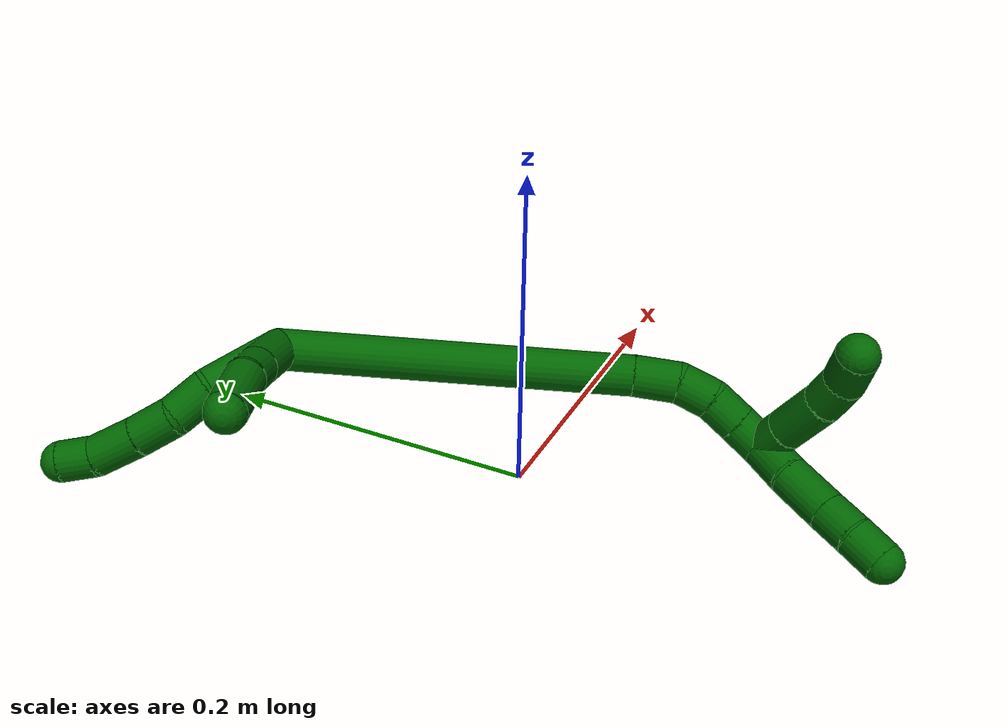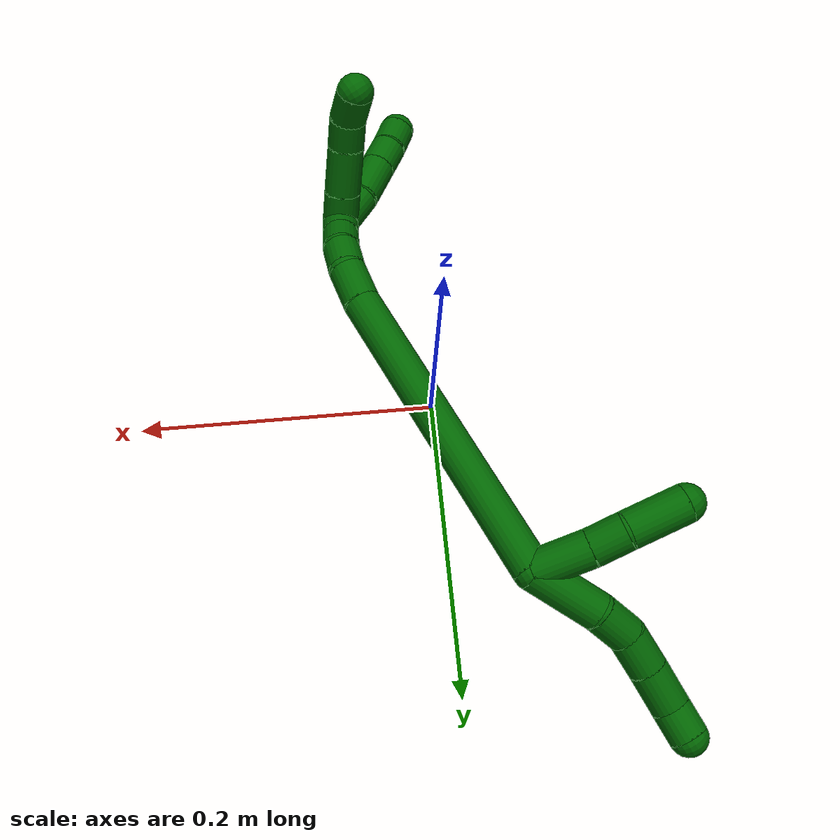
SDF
<sdf version="1.7">
 <world name="default">
  <model name="6">
   <static>0</static>
   <link name="6">
    <collision name="collision-cylinder-e_1_2_8">
     <pose>-0.019974 0.008242 0.009951 -0.691714 -0.996614 0.387215</pose>
     <geometry><cylinder><radius>0.0125</radius><length>0.047579</length></cylinder></geometry>
     <surface>
      <friction><ode><mu>1.16</mu><mu2>1.16</mu2><slip1>0</slip1><slip2>0</slip2></ode></friction>
      <contact><ode><kp>1e+06</kp><kd>1</kd><max_vel>0</max_vel><min_depth>0.001</min_depth></ode></contact>
     </surface>
    </collision>
    <visual name="visual-cylinder-e_1_2_8">
     <pose>-0.019974 0.008242 0.009951 -0.691714 -0.996614 0.387215</pose>
     <geometry><cylinder><radius>0.0125</radius><length>0.047579</length></cylinder></geometry>
     <material><ambient>0 0.392157 0.003922 1</ambient></material>
    </visual>
    <collision name="collision-cylinder-e_2_8_9">
     <pose>-0.05201 0.018405 0.023685 -0.469964 -1.23259 0.335961</pose>
     <geometry><cylinder><radius>0.0125</radius><length>0.025572</length></cylinder></geometry>
     <surface>
      <friction><ode><mu>1.16</mu><mu2>1.16</mu2><slip1>0</slip1><slip2>0</slip2></ode></friction>
      <contact><ode><kp>1e+06</kp><kd>1</kd><max_vel>0</max_vel><min_depth>0.001</min_depth></ode></contact>
     </surface>
    </collision>
    <visual name="visual-cylinder-e_2_8_9">
     <pose>-0.05201 0.018405 0.023685 -0.469964 -1.23259 0.335961</pose>
     <geometry><cylinder><radius>0.0125</radius><length>0.025572</length></cylinder></geometry>
     <material><ambient>0 0.392157 0.003922 1</ambient></material>
    </visual>
    <collision name="collision-cylinder-e_3_9_10">
     <pose>-0.076538 0.023755 0.027486 -1.56531 -1.30238 1.2971</pose>
     <geometry><cylinder><radius>0.0125</radius><length>0.025858</length></cylinder></geometry>
     <surface>
      <friction><ode><mu>1.16</mu><mu2>1.16</mu2><slip1>0</slip1><slip2>0</slip2></ode></friction>
      <contact><ode><kp>1e+06</kp><kd>1</kd><max_vel>0</max_vel><min_depth>0.001</min_depth></ode></contact>
     </surface>
    </collision>
    <visual name="visual-cylinder-e_3_9_10">
     <pose>-0.076538 0.023755 0.027486 -1.56531 -1.30238 1.2971</pose>
     <geometry><cylinder><radius>0.0125</radius><length>0.025858</length></cylinder></geometry>
     <material><ambient>0 0.392157 0.003922 1</ambient></material>
    </visual>
    <collision name="collision-cylinder-e_4_10_11">
     <pose>-0.103023 0.031858 0.027137 -1.64941 -1.24802 1.32353</pose>
     <geometry><cylinder><radius>0.0125</radius><length>0.029563</length></cylinder></geometry>
     <surface>
      <friction><ode><mu>1.16</mu><mu2>1.16</mu2><slip1>0</slip1><slip2>0</slip2></ode></friction>
      <contact><ode><kp>1e+06</kp><kd>1</kd><max_vel>0</max_vel><min_depth>0.001</min_depth></ode></contact>
     </surface>
    </collision>
    <visual name="visual-cylinder-e_4_10_11">
     <pose>-0.103023 0.031858 0.027137 -1.64941 -1.24802 1.32353</pose>
     <geometry><cylinder><radius>0.0125</radius><length>0.029563</length></cylinder></geometry>
     <material><ambient>0 0.392157 0.003922 1</ambient></material>
    </visual>
    <collision name="collision-cylinder-e_5_11_6">
     <pose>-0.12585 0.042611 0.02628 -1.6509 -0.965272 1.03268</pose>
     <geometry><cylinder><radius>0.0125</radius><length>0.021428</length></cylinder></geometry>
     <surface>
      <friction><ode><mu>1.16</mu><mu2>1.16</mu2><slip1>0</slip1><slip2>0</slip2></ode></friction>
      <contact><ode><kp>1e+06</kp><kd>1</kd><max_vel>0</max_vel><min_depth>0.001</min_depth></ode></contact>
     </surface>
    </collision>
    <visual name="visual-cylinder-e_5_11_6">
     <pose>-0.12585 0.042611 0.02628 -1.6509 -0.965272 1.03268</pose>
     <geometry><cylinder><radius>0.0125</radius><length>0.021428</length></cylinder></geometry>
     <material><ambient>0 0.392157 0.003922 1</ambient></material>
    </visual>
    <collision name="collision-cylinder-e_1_2_12">
     <pose>-0.001875 0.004034 0.018224 -0.21783 -0.100141 0.010959</pose>
     <geometry><cylinder><radius>0.0125</radius><length>0.037517</length></cylinder></geometry>
     <surface>
      <friction><ode><mu>1.16</mu><mu2>1.16</mu2><slip1>0</slip1><slip2>0</slip2></ode></friction>
      <contact><ode><kp>1e+06</kp><kd>1</kd><max_vel>0</max_vel><min_depth>0.001</min_depth></ode></contact>
     </surface>
    </collision>
    <visual name="visual-cylinder-e_1_2_12">
     <pose>-0.001875 0.004034 0.018224 -0.21783 -0.100141 0.010959</pose>
     <geometry><cylinder><radius>0.0125</radius><length>0.037517</length></cylinder></geometry>
     <material><ambient>0 0.392157 0.003922 1</ambient></material>
    </visual>
    <collision name="collision-cylinder-e_2_12_13">
     <pose>-0.003969 0.010231 0.047924 -0.18636 -0.018685 0.001746</pose>
     <geometry><cylinder><radius>0.0125</radius><length>0.023362</length></cylinder></geometry>
     <surface>
      <friction><ode><mu>1.16</mu><mu2>1.16</mu2><slip1>0</slip1><slip2>0</slip2></ode></friction>
      <contact><ode><kp>1e+06</kp><kd>1</kd><max_vel>0</max_vel><min_depth>0.001</min_depth></ode></contact>
     </surface>
    </collision>
    <visual name="visual-cylinder-e_2_12_13">
     <pose>-0.003969 0.010231 0.047924 -0.18636 -0.018685 0.001746</pose>
     <geometry><cylinder><radius>0.0125</radius><length>0.023362</length></cylinder></geometry>
     <material><ambient>0 0.392157 0.003922 1</ambient></material>
    </visual>
    <collision name="collision-cylinder-e_3_13_5">
     <pose>-0.007188 0.012955 0.078722 -0.028969 -0.153993 0.002235</pose>
     <geometry><cylinder><radius>0.0125</radius><length>0.039121</length></cylinder></geometry>
     <surface>
      <friction><ode><mu>1.16</mu><mu2>1.16</mu2><slip1>0</slip1><slip2>0</slip2></ode></friction>
      <contact><ode><kp>1e+06</kp><kd>1</kd><max_vel>0</max_vel><min_depth>0.001</min_depth></ode></contact>
     </surface>
    </collision>
    <visual name="visual-cylinder-e_3_13_5">
     <pose>-0.007188 0.012955 0.078722 -0.028969 -0.153993 0.002235</pose>
     <geometry><cylinder><radius>0.0125</radius><length>0.039121</length></cylinder></geometry>
     <material><ambient>0 0.392157 0.003922 1</ambient></material>
    </visual>
    <collision name="collision-cylinder-e_1_2_14">
     <pose>0.068822 -0.079926 0.003038 1.53281 0.710534 0.686108</pose>
     <geometry><cylinder><radius>0.0125</radius><length>0.211035</length></cylinder></geometry>
     <surface>
      <friction><ode><mu>1.16</mu><mu2>1.16</mu2><slip1>0</slip1><slip2>0</slip2></ode></friction>
      <contact><ode><kp>1e+06</kp><kd>1</kd><max_vel>0</max_vel><min_depth>0.001</min_depth></ode></contact>
     </surface>
    </collision>
    <visual name="visual-cylinder-e_1_2_14">
     <pose>0.068822 -0.079926 0.003038 1.53281 0.710534 0.686108</pose>
     <geometry><cylinder><radius>0.0125</radius><length>0.211035</length></cylinder></geometry>
     <material><ambient>0 0.392157 0.003922 1</ambient></material>
    </visual>
    <collision name="collision-cylinder-e_2_14_15">
     <pose>0.146075 -0.170382 0.008258 1.36641 0.664812 0.547865</pose>
     <geometry><cylinder><radius>0.0125</radius><length>0.027329</length></cylinder></geometry>
     <surface>
      <friction><ode><mu>1.16</mu><mu2>1.16</mu2><slip1>0</slip1><slip2>0</slip2></ode></friction>
      <contact><ode><kp>1e+06</kp><kd>1</kd><max_vel>0</max_vel><min_depth>0.001</min_depth></ode></contact>
     </surface>
    </collision>
    <visual name="visual-cylinder-e_2_14_15">
     <pose>0.146075 -0.170382 0.008258 1.36641 0.664812 0.547865</pose>
     <geometry><cylinder><radius>0.0125</radius><length>0.027329</length></cylinder></geometry>
     <material><ambient>0 0.392157 0.003922 1</ambient></material>
    </visual>
    <collision name="collision-cylinder-e_3_15_16">
     <pose>0.158171 -0.190698 0.013073 1.30796 0.347214 0.267244</pose>
     <geometry><cylinder><radius>0.0125</radius><length>0.021553</length></cylinder></geometry>
     <surface>
      <friction><ode><mu>1.16</mu><mu2>1.16</mu2><slip1>0</slip1><slip2>0</slip2></ode></friction>
      <contact><ode><kp>1e+06</kp><kd>1</kd><max_vel>0</max_vel><min_depth>0.001</min_depth></ode></contact>
     </surface>
    </collision>
    <visual name="visual-cylinder-e_3_15_16">
     <pose>0.158171 -0.190698 0.013073 1.30796 0.347214 0.267244</pose>
     <geometry><cylinder><radius>0.0125</radius><length>0.021553</length></cylinder></geometry>
     <material><ambient>0 0.392157 0.003922 1</ambient></material>
    </visual>
    <collision name="collision-cylinder-e_4_16_17">
     <pose>0.162496 -0.21008 0.018573 1.28053 0.0656 0.048877</pose>
     <geometry><cylinder><radius>0.0125</radius><length>0.020074</length></cylinder></geometry>
     <surface>
      <friction><ode><mu>1.16</mu><mu2>1.16</mu2><slip1>0</slip1><slip2>0</slip2></ode></friction>
      <contact><ode><kp>1e+06</kp><kd>1</kd><max_vel>0</max_vel><min_depth>0.001</min_depth></ode></contact>
     </surface>
    </collision>
    <visual name="visual-cylinder-e_4_16_17">
     <pose>0.162496 -0.21008 0.018573 1.28053 0.0656 0.048877</pose>
     <geometry><cylinder><radius>0.0125</radius><length>0.020074</length></cylinder></geometry>
     <material><ambient>0 0.392157 0.003922 1</ambient></material>
    </visual>
    <collision name="collision-cylinder-e_5_17_1">
     <pose>0.163728 -0.229201 0.024447 1.26489 0.057396 0.042069</pose>
     <geometry><cylinder><radius>0.0125</radius><length>0.02001</length></cylinder></geometry>
     <surface>
      <friction><ode><mu>1.16</mu><mu2>1.16</mu2><slip1>0</slip1><slip2>0</slip2></ode></friction>
      <contact><ode><kp>1e+06</kp><kd>1</kd><max_vel>0</max_vel><min_depth>0.001</min_depth></ode></contact>
     </surface>
    </collision>
    <visual name="visual-cylinder-e_5_17_1">
     <pose>0.163728 -0.229201 0.024447 1.26489 0.057396 0.042069</pose>
     <geometry><cylinder><radius>0.0125</radius><length>0.02001</length></cylinder></geometry>
     <material><ambient>0 0.392157 0.003922 1</ambient></material>
    </visual>
    <collision name="collision-cylinder-e_1_1_18">
     <pose>0.174002 -0.236654 0.033343 -0.338433 0.999064 -0.185927</pose>
     <geometry><cylinder><radius>0.0125</radius><length>0.023069</length></cylinder></geometry>
     <surface>
      <friction><ode><mu>1.16</mu><mu2>1.16</mu2><slip1>0</slip1><slip2>0</slip2></ode></friction>
      <contact><ode><kp>1e+06</kp><kd>1</kd><max_vel>0</max_vel><min_depth>0.001</min_depth></ode></contact>
     </surface>
    </collision>
    <visual name="visual-cylinder-e_1_1_18">
     <pose>0.174002 -0.236654 0.033343 -0.338433 0.999064 -0.185927</pose>
     <geometry><cylinder><radius>0.0125</radius><length>0.023069</length></cylinder></geometry>
     <material><ambient>0 0.392157 0.003922 1</ambient></material>
    </visual>
    <collision name="collision-cylinder-e_2_18_19">
     <pose>0.197689 -0.231518 0.047913 -0.33914 0.988576 -0.184017</pose>
     <geometry><cylinder><radius>0.0125</radius><length>0.03349</length></cylinder></geometry>
     <surface>
      <friction><ode><mu>1.16</mu><mu2>1.16</mu2><slip1>0</slip1><slip2>0</slip2></ode></friction>
      <contact><ode><kp>1e+06</kp><kd>1</kd><max_vel>0</max_vel><min_depth>0.001</min_depth></ode></contact>
     </surface>
    </collision>
    <visual name="visual-cylinder-e_2_18_19">
     <pose>0.197689 -0.231518 0.047913 -0.33914 0.988576 -0.184017</pose>
     <geometry><cylinder><radius>0.0125</radius><length>0.03349</length></cylinder></geometry>
     <material><ambient>0 0.392157 0.003922 1</ambient></material>
    </visual>
    <collision name="collision-cylinder-e_3_19_20">
     <pose>0.220327 -0.225325 0.06148 -0.570069 0.98022 -0.310152</pose>
     <geometry><cylinder><radius>0.0125</radius><length>0.020833</length></cylinder></geometry>
     <surface>
      <friction><ode><mu>1.16</mu><mu2>1.16</mu2><slip1>0</slip1><slip2>0</slip2></ode></friction>
      <contact><ode><kp>1e+06</kp><kd>1</kd><max_vel>0</max_vel><min_depth>0.001</min_depth></ode></contact>
     </surface>
    </collision>
    <visual name="visual-cylinder-e_3_19_20">
     <pose>0.220327 -0.225325 0.06148 -0.570069 0.98022 -0.310152</pose>
     <geometry><cylinder><radius>0.0125</radius><length>0.020833</length></cylinder></geometry>
     <material><ambient>0 0.392157 0.003922 1</ambient></material>
    </visual>
    <collision name="collision-cylinder-e_4_20_4">
     <pose>0.236795 -0.216345 0.072062 -0.798348 0.763432 -0.335458</pose>
     <geometry><cylinder><radius>0.0125</radius><length>0.022608</length></cylinder></geometry>
     <surface>
      <friction><ode><mu>1.16</mu><mu2>1.16</mu2><slip1>0</slip1><slip2>0</slip2></ode></friction>
      <contact><ode><kp>1e+06</kp><kd>1</kd><max_vel>0</max_vel><min_depth>0.001</min_depth></ode></contact>
     </surface>
    </collision>
    <visual name="visual-cylinder-e_4_20_4">
     <pose>0.236795 -0.216345 0.072062 -0.798348 0.763432 -0.335458</pose>
     <geometry><cylinder><radius>0.0125</radius><length>0.022608</length></cylinder></geometry>
     <material><ambient>0 0.392157 0.003922 1</ambient></material>
    </visual>
    <collision name="collision-cylinder-e_1_1_21">
     <pose>0.165741 -0.245736 0.039015 0.54519 0.106068 0.029677</pose>
     <geometry><cylinder><radius>0.0125</radius><length>0.027191</length></cylinder></geometry>
     <surface>
      <friction><ode><mu>1.16</mu><mu2>1.16</mu2><slip1>0</slip1><slip2>0</slip2></ode></friction>
      <contact><ode><kp>1e+06</kp><kd>1</kd><max_vel>0</max_vel><min_depth>0.001</min_depth></ode></contact>
     </surface>
    </collision>
    <visual name="visual-cylinder-e_1_1_21">
     <pose>0.165741 -0.245736 0.039015 0.54519 0.106068 0.029677</pose>
     <geometry><cylinder><radius>0.0125</radius><length>0.027191</length></cylinder></geometry>
     <material><ambient>0 0.392157 0.003922 1</ambient></material>
    </visual>
    <collision name="collision-cylinder-e_2_21_22">
     <pose>0.169457 -0.26294 0.062138 0.722492 0.146604 0.055476</pose>
     <geometry><cylinder><radius>0.0125</radius><length>0.031164</length></cylinder></geometry>
     <surface>
      <friction><ode><mu>1.16</mu><mu2>1.16</mu2><slip1>0</slip1><slip2>0</slip2></ode></friction>
      <contact><ode><kp>1e+06</kp><kd>1</kd><max_vel>0</max_vel><min_depth>0.001</min_depth></ode></contact>
     </surface>
    </collision>
    <visual name="visual-cylinder-e_2_21_22">
     <pose>0.169457 -0.26294 0.062138 0.722492 0.146604 0.055476</pose>
     <geometry><cylinder><radius>0.0125</radius><length>0.031164</length></cylinder></geometry>
     <material><ambient>0 0.392157 0.003922 1</ambient></material>
    </visual>
    <collision name="collision-cylinder-e_3_22_23">
     <pose>0.173477 -0.279697 0.081624 0.691854 0.1679 0.060639</pose>
     <geometry><cylinder><radius>0.0125</radius><length>0.02087</length></cylinder></geometry>
     <surface>
      <friction><ode><mu>1.16</mu><mu2>1.16</mu2><slip1>0</slip1><slip2>0</slip2></ode></friction>
      <contact><ode><kp>1e+06</kp><kd>1</kd><max_vel>0</max_vel><min_depth>0.001</min_depth></ode></contact>
     </surface>
    </collision>
    <visual name="visual-cylinder-e_3_22_23">
     <pose>0.173477 -0.279697 0.081624 0.691854 0.1679 0.060639</pose>
     <geometry><cylinder><radius>0.0125</radius><length>0.02087</length></cylinder></geometry>
     <material><ambient>0 0.392157 0.003922 1</ambient></material>
    </visual>
    <collision name="collision-cylinder-e_4_23_3">
     <pose>0.176602 -0.293882 0.096468 0.833503 0.133346 0.0591</pose>
     <geometry><cylinder><radius>0.0125</radius><length>0.020775</length></cylinder></geometry>
     <surface>
      <friction><ode><mu>1.16</mu><mu2>1.16</mu2><slip1>0</slip1><slip2>0</slip2></ode></friction>
      <contact><ode><kp>1e+06</kp><kd>1</kd><max_vel>0</max_vel><min_depth>0.001</min_depth></ode></contact>
     </surface>
    </collision>
    <visual name="visual-cylinder-e_4_23_3">
     <pose>0.176602 -0.293882 0.096468 0.833503 0.133346 0.0591</pose>
     <geometry><cylinder><radius>0.0125</radius><length>0.020775</length></cylinder></geometry>
     <material><ambient>0 0.392157 0.003922 1</ambient></material>
    </visual>
    <collision name="collision-sphere-3">
     <pose>0.177983 -0.301504 0.103389 0 -0 0</pose>
     <geometry><sphere><radius>0.0125</radius></sphere></geometry>
     <surface>
      <friction><ode><mu>1.16</mu><mu2>1.16</mu2><slip1>0</slip1><slip2>0</slip2></ode></friction>
      <contact><ode><kp>1e+06</kp><kd>1</kd><max_vel>0</max_vel><min_depth>0.001</min_depth></ode></contact>
     </surface>
    </collision>
    <visual name="visual-sphere-3">
     <pose>0.177983 -0.301504 0.103389 0 -0 0</pose>
     <geometry><sphere><radius>0.0125</radius></sphere></geometry>
     <material><ambient>0 0.392157 0.003922 1</ambient></material>
    </visual>
    <collision name="collision-sphere-23">
     <pose>0.175221 -0.286261 0.089547 0 -0 0</pose>
     <geometry><sphere><radius>0.0125</radius></sphere></geometry>
     <surface>
      <friction><ode><mu>1.16</mu><mu2>1.16</mu2><slip1>0</slip1><slip2>0</slip2></ode></friction>
      <contact><ode><kp>1e+06</kp><kd>1</kd><max_vel>0</max_vel><min_depth>0.001</min_depth></ode></contact>
     </surface>
    </collision>
    <visual name="visual-sphere-23">
     <pose>0.175221 -0.286261 0.089547 0 -0 0</pose>
     <geometry><sphere><radius>0.0125</radius></sphere></geometry>
     <material><ambient>0 0.392157 0.003922 1</ambient></material>
    </visual>
    <collision name="collision-sphere-22">
     <pose>0.171733 -0.273134 0.073701 0 -0 0</pose>
     <geometry><sphere><radius>0.0125</radius></sphere></geometry>
     <surface>
      <friction><ode><mu>1.16</mu><mu2>1.16</mu2><slip1>0</slip1><slip2>0</slip2></ode></friction>
      <contact><ode><kp>1e+06</kp><kd>1</kd><max_vel>0</max_vel><min_depth>0.001</min_depth></ode></contact>
     </surface>
    </collision>
    <visual name="visual-sphere-22">
     <pose>0.171733 -0.273134 0.073701 0 -0 0</pose>
     <geometry><sphere><radius>0.0125</radius></sphere></geometry>
     <material><ambient>0 0.392157 0.003922 1</ambient></material>
    </visual>
    <collision name="collision-sphere-21">
     <pose>0.167181 -0.252747 0.050574 0 -0 0</pose>
     <geometry><sphere><radius>0.0125</radius></sphere></geometry>
     <surface>
      <friction><ode><mu>1.16</mu><mu2>1.16</mu2><slip1>0</slip1><slip2>0</slip2></ode></friction>
      <contact><ode><kp>1e+06</kp><kd>1</kd><max_vel>0</max_vel><min_depth>0.001</min_depth></ode></contact>
     </surface>
    </collision>
    <visual name="visual-sphere-21">
     <pose>0.167181 -0.252747 0.050574 0 -0 0</pose>
     <geometry><sphere><radius>0.0125</radius></sphere></geometry>
     <material><ambient>0 0.392157 0.003922 1</ambient></material>
    </visual>
    <collision name="collision-sphere-4">
     <pose>0.24461 -0.210496 0.077761 0 -0 0</pose>
     <geometry><sphere><radius>0.0125</radius></sphere></geometry>
     <surface>
      <friction><ode><mu>1.16</mu><mu2>1.16</mu2><slip1>0</slip1><slip2>0</slip2></ode></friction>
      <contact><ode><kp>1e+06</kp><kd>1</kd><max_vel>0</max_vel><min_depth>0.001</min_depth></ode></contact>
     </surface>
    </collision>
    <visual name="visual-sphere-4">
     <pose>0.24461 -0.210496 0.077761 0 -0 0</pose>
     <geometry><sphere><radius>0.0125</radius></sphere></geometry>
     <material><ambient>0 0.392157 0.003922 1</ambient></material>
    </visual>
    <collision name="collision-sphere-20">
     <pose>0.228979 -0.222194 0.066363 0 -0 0</pose>
     <geometry><sphere><radius>0.0125</radius></sphere></geometry>
     <surface>
      <friction><ode><mu>1.16</mu><mu2>1.16</mu2><slip1>0</slip1><slip2>0</slip2></ode></friction>
      <contact><ode><kp>1e+06</kp><kd>1</kd><max_vel>0</max_vel><min_depth>0.001</min_depth></ode></contact>
     </surface>
    </collision>
    <visual name="visual-sphere-20">
     <pose>0.228979 -0.222194 0.066363 0 -0 0</pose>
     <geometry><sphere><radius>0.0125</radius></sphere></geometry>
     <material><ambient>0 0.392157 0.003922 1</ambient></material>
    </visual>
    <collision name="collision-sphere-6">
     <pose>-0.134659 0.048689 0.025793 0 -0 0</pose>
     <geometry><sphere><radius>0.0125</radius></sphere></geometry>
     <surface>
      <friction><ode><mu>1.16</mu><mu2>1.16</mu2><slip1>0</slip1><slip2>0</slip2></ode></friction>
      <contact><ode><kp>1e+06</kp><kd>1</kd><max_vel>0</max_vel><min_depth>0.001</min_depth></ode></contact>
     </surface>
    </collision>
    <visual name="visual-sphere-6">
     <pose>-0.134659 0.048689 0.025793 0 -0 0</pose>
     <geometry><sphere><radius>0.0125</radius></sphere></geometry>
     <material><ambient>0 0.392157 0.003922 1</ambient></material>
    </visual>
    <collision name="collision-sphere-11">
     <pose>-0.117041 0.036532 0.026768 0 -0 0</pose>
     <geometry><sphere><radius>0.0125</radius></sphere></geometry>
     <surface>
      <friction><ode><mu>1.16</mu><mu2>1.16</mu2><slip1>0</slip1><slip2>0</slip2></ode></friction>
      <contact><ode><kp>1e+06</kp><kd>1</kd><max_vel>0</max_vel><min_depth>0.001</min_depth></ode></contact>
     </surface>
    </collision>
    <visual name="visual-sphere-11">
     <pose>-0.117041 0.036532 0.026768 0 -0 0</pose>
     <geometry><sphere><radius>0.0125</radius></sphere></geometry>
     <material><ambient>0 0.392157 0.003922 1</ambient></material>
    </visual>
    <collision name="collision-sphere-10">
     <pose>-0.089005 0.027184 0.027505 0 -0 0</pose>
     <geometry><sphere><radius>0.0125</radius></sphere></geometry>
     <surface>
      <friction><ode><mu>1.16</mu><mu2>1.16</mu2><slip1>0</slip1><slip2>0</slip2></ode></friction>
      <contact><ode><kp>1e+06</kp><kd>1</kd><max_vel>0</max_vel><min_depth>0.001</min_depth></ode></contact>
     </surface>
    </collision>
    <visual name="visual-sphere-10">
     <pose>-0.089005 0.027184 0.027505 0 -0 0</pose>
     <geometry><sphere><radius>0.0125</radius></sphere></geometry>
     <material><ambient>0 0.392157 0.003922 1</ambient></material>
    </visual>
    <collision name="collision-sphere-9">
     <pose>-0.064072 0.020326 0.027467 0 -0 0</pose>
     <geometry><sphere><radius>0.0125</radius></sphere></geometry>
     <surface>
      <friction><ode><mu>1.16</mu><mu2>1.16</mu2><slip1>0</slip1><slip2>0</slip2></ode></friction>
      <contact><ode><kp>1e+06</kp><kd>1</kd><max_vel>0</max_vel><min_depth>0.001</min_depth></ode></contact>
     </surface>
    </collision>
    <visual name="visual-sphere-9">
     <pose>-0.064072 0.020326 0.027467 0 -0 0</pose>
     <geometry><sphere><radius>0.0125</radius></sphere></geometry>
     <material><ambient>0 0.392157 0.003922 1</ambient></material>
    </visual>
    <collision name="collision-sphere-2">
     <geometry><sphere><radius>0.0125</radius></sphere></geometry>
     <surface>
      <friction><ode><mu>1.16</mu><mu2>1.16</mu2><slip1>0</slip1><slip2>0</slip2></ode></friction>
      <contact><ode><kp>1e+06</kp><kd>1</kd><max_vel>0</max_vel><min_depth>0.001</min_depth></ode></contact>
     </surface>
    </collision>
    <visual name="visual-sphere-2">
     <geometry><sphere><radius>0.0125</radius></sphere></geometry>
     <material><ambient>0 0.392157 0.003922 1</ambient></material>
    </visual>
    <collision name="collision-sphere-19">
     <pose>0.211675 -0.228455 0.056597 0 -0 0</pose>
     <geometry><sphere><radius>0.0125</radius></sphere></geometry>
     <surface>
      <friction><ode><mu>1.16</mu><mu2>1.16</mu2><slip1>0</slip1><slip2>0</slip2></ode></friction>
      <contact><ode><kp>1e+06</kp><kd>1</kd><max_vel>0</max_vel><min_depth>0.001</min_depth></ode></contact>
     </surface>
    </collision>
    <visual name="visual-sphere-19">
     <pose>0.211675 -0.228455 0.056597 0 -0 0</pose>
     <geometry><sphere><radius>0.0125</radius></sphere></geometry>
     <material><ambient>0 0.392157 0.003922 1</ambient></material>
    </visual>
    <collision name="collision-sphere-8">
     <pose>-0.039949 0.016484 0.019902 0 -0 0</pose>
     <geometry><sphere><radius>0.0125</radius></sphere></geometry>
     <surface>
      <friction><ode><mu>1.16</mu><mu2>1.16</mu2><slip1>0</slip1><slip2>0</slip2></ode></friction>
      <contact><ode><kp>1e+06</kp><kd>1</kd><max_vel>0</max_vel><min_depth>0.001</min_depth></ode></contact>
     </surface>
    </collision>
    <visual name="visual-sphere-8">
     <pose>-0.039949 0.016484 0.019902 0 -0 0</pose>
     <geometry><sphere><radius>0.0125</radius></sphere></geometry>
     <material><ambient>0 0.392157 0.003922 1</ambient></material>
    </visual>
    <collision name="collision-sphere-12">
     <pose>-0.003751 0.008067 0.036447 0 -0 0</pose>
     <geometry><sphere><radius>0.0125</radius></sphere></geometry>
     <surface>
      <friction><ode><mu>1.16</mu><mu2>1.16</mu2><slip1>0</slip1><slip2>0</slip2></ode></friction>
      <contact><ode><kp>1e+06</kp><kd>1</kd><max_vel>0</max_vel><min_depth>0.001</min_depth></ode></contact>
     </surface>
    </collision>
    <visual name="visual-sphere-12">
     <pose>-0.003751 0.008067 0.036447 0 -0 0</pose>
     <geometry><sphere><radius>0.0125</radius></sphere></geometry>
     <material><ambient>0 0.392157 0.003922 1</ambient></material>
    </visual>
    <collision name="collision-sphere-13">
     <pose>-0.004187 0.012395 0.059401 0 -0 0</pose>
     <geometry><sphere><radius>0.0125</radius></sphere></geometry>
     <surface>
      <friction><ode><mu>1.16</mu><mu2>1.16</mu2><slip1>0</slip1><slip2>0</slip2></ode></friction>
      <contact><ode><kp>1e+06</kp><kd>1</kd><max_vel>0</max_vel><min_depth>0.001</min_depth></ode></contact>
     </surface>
    </collision>
    <visual name="visual-sphere-13">
     <pose>-0.004187 0.012395 0.059401 0 -0 0</pose>
     <geometry><sphere><radius>0.0125</radius></sphere></geometry>
     <material><ambient>0 0.392157 0.003922 1</ambient></material>
    </visual>
    <collision name="collision-sphere-5">
     <pose>-0.010188 0.013515 0.098042 0 -0 0</pose>
     <geometry><sphere><radius>0.0125</radius></sphere></geometry>
     <surface>
      <friction><ode><mu>1.16</mu><mu2>1.16</mu2><slip1>0</slip1><slip2>0</slip2></ode></friction>
      <contact><ode><kp>1e+06</kp><kd>1</kd><max_vel>0</max_vel><min_depth>0.001</min_depth></ode></contact>
     </surface>
    </collision>
    <visual name="visual-sphere-5">
     <pose>-0.010188 0.013515 0.098042 0 -0 0</pose>
     <geometry><sphere><radius>0.0125</radius></sphere></geometry>
     <material><ambient>0 0.392157 0.003922 1</ambient></material>
    </visual>
    <collision name="collision-sphere-14">
     <pose>0.137645 -0.159852 0.006075 0 -0 0</pose>
     <geometry><sphere><radius>0.0125</radius></sphere></geometry>
     <surface>
      <friction><ode><mu>1.16</mu><mu2>1.16</mu2><slip1>0</slip1><slip2>0</slip2></ode></friction>
      <contact><ode><kp>1e+06</kp><kd>1</kd><max_vel>0</max_vel><min_depth>0.001</min_depth></ode></contact>
     </surface>
    </collision>
    <visual name="visual-sphere-14">
     <pose>0.137645 -0.159852 0.006075 0 -0 0</pose>
     <geometry><sphere><radius>0.0125</radius></sphere></geometry>
     <material><ambient>0 0.392157 0.003922 1</ambient></material>
    </visual>
    <collision name="collision-sphere-15">
     <pose>0.154504 -0.180913 0.010441 0 -0 0</pose>
     <geometry><sphere><radius>0.0125</radius></sphere></geometry>
     <surface>
      <friction><ode><mu>1.16</mu><mu2>1.16</mu2><slip1>0</slip1><slip2>0</slip2></ode></friction>
      <contact><ode><kp>1e+06</kp><kd>1</kd><max_vel>0</max_vel><min_depth>0.001</min_depth></ode></contact>
     </surface>
    </collision>
    <visual name="visual-sphere-15">
     <pose>0.154504 -0.180913 0.010441 0 -0 0</pose>
     <geometry><sphere><radius>0.0125</radius></sphere></geometry>
     <material><ambient>0 0.392157 0.003922 1</ambient></material>
    </visual>
    <collision name="collision-sphere-16">
     <pose>0.161838 -0.200483 0.015706 0 -0 0</pose>
     <geometry><sphere><radius>0.0125</radius></sphere></geometry>
     <surface>
      <friction><ode><mu>1.16</mu><mu2>1.16</mu2><slip1>0</slip1><slip2>0</slip2></ode></friction>
      <contact><ode><kp>1e+06</kp><kd>1</kd><max_vel>0</max_vel><min_depth>0.001</min_depth></ode></contact>
     </surface>
    </collision>
    <visual name="visual-sphere-16">
     <pose>0.161838 -0.200483 0.015706 0 -0 0</pose>
     <geometry><sphere><radius>0.0125</radius></sphere></geometry>
     <material><ambient>0 0.392157 0.003922 1</ambient></material>
    </visual>
    <collision name="collision-sphere-17">
     <pose>0.163154 -0.219676 0.021439 0 -0 0</pose>
     <geometry><sphere><radius>0.0125</radius></sphere></geometry>
     <surface>
      <friction><ode><mu>1.16</mu><mu2>1.16</mu2><slip1>0</slip1><slip2>0</slip2></ode></friction>
      <contact><ode><kp>1e+06</kp><kd>1</kd><max_vel>0</max_vel><min_depth>0.001</min_depth></ode></contact>
     </surface>
    </collision>
    <visual name="visual-sphere-17">
     <pose>0.163154 -0.219676 0.021439 0 -0 0</pose>
     <geometry><sphere><radius>0.0125</radius></sphere></geometry>
     <material><ambient>0 0.392157 0.003922 1</ambient></material>
    </visual>
    <collision name="collision-sphere-1">
     <pose>0.164302 -0.238726 0.027455 0 -0 0</pose>
     <geometry><sphere><radius>0.0125</radius></sphere></geometry>
     <surface>
      <friction><ode><mu>1.16</mu><mu2>1.16</mu2><slip1>0</slip1><slip2>0</slip2></ode></friction>
      <contact><ode><kp>1e+06</kp><kd>1</kd><max_vel>0</max_vel><min_depth>0.001</min_depth></ode></contact>
     </surface>
    </collision>
    <visual name="visual-sphere-1">
     <pose>0.164302 -0.238726 0.027455 0 -0 0</pose>
     <geometry><sphere><radius>0.0125</radius></sphere></geometry>
     <material><ambient>0 0.392157 0.003922 1</ambient></material>
    </visual>
    <collision name="collision-sphere-18">
     <pose>0.183702 -0.234581 0.03923 0 -0 0</pose>
     <geometry><sphere><radius>0.0125</radius></sphere></geometry>
     <surface>
      <friction><ode><mu>1.16</mu><mu2>1.16</mu2><slip1>0</slip1><slip2>0</slip2></ode></friction>
      <contact><ode><kp>1e+06</kp><kd>1</kd><max_vel>0</max_vel><min_depth>0.001</min_depth></ode></contact>
     </surface>
    </collision>
    <visual name="visual-sphere-18">
     <pose>0.183702 -0.234581 0.03923 0 -0 0</pose>
     <geometry><sphere><radius>0.0125</radius></sphere></geometry>
     <material><ambient>0 0.392157 0.003922 1</ambient></material>
    </visual>
    <inertial>
     <pose>0.074229 -0.106433 0.029383 0 -0 0</pose>
     <mass>0.75</mass>
     <inertia>
      <ixx>0.000902</ixx>
      <ixy>0</ixy>
      <ixz>0</ixz>
      <iyy>0.000772</iyy>
      <iyz>0</iyz>
      <izz>0.000114</izz>
     </inertia>
    </inertial>
   </link>
   <pose>-0.044272 0.138482 0.076953 1.32049 -0.779203 -0.927853</pose>
  </model>
 </world>
</sdf>
